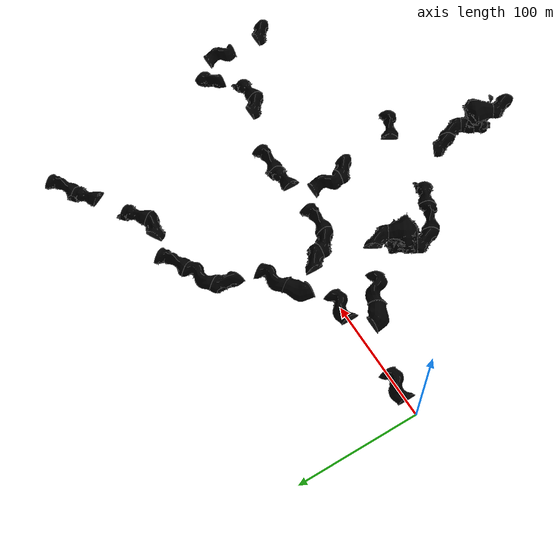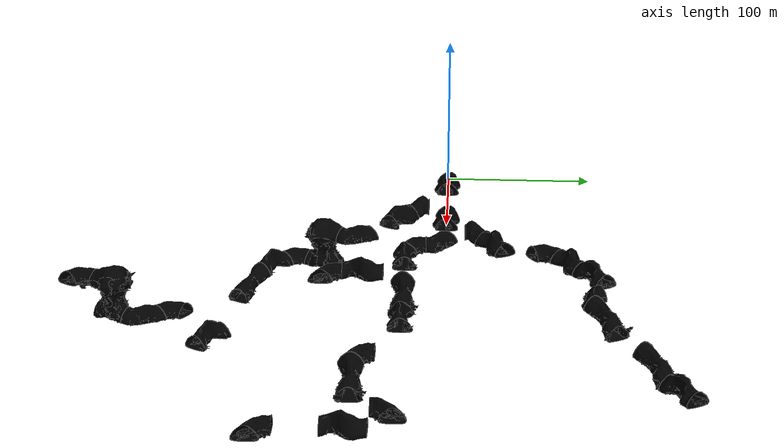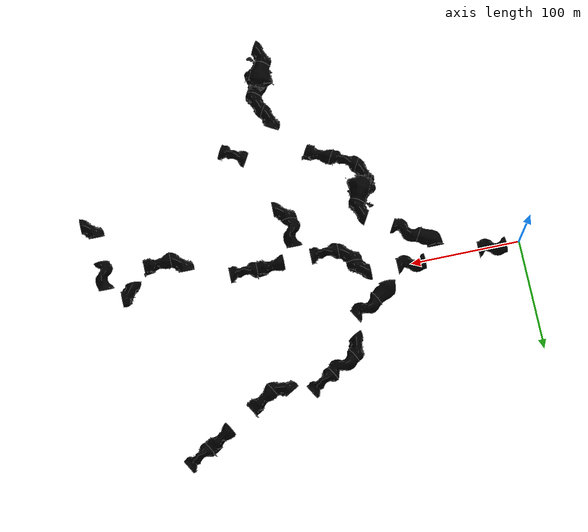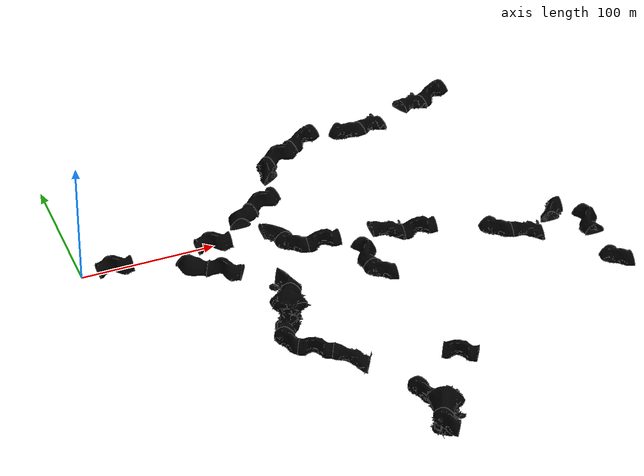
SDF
<sdf version="1.6">
 <world name="simple_cave_03">
  <physics name="1ms" type="ode">
   <max_step_size>0.004</max_step_size>
   <real_time_factor>1.0</real_time_factor>
  </physics>
  <scene>
   <ambient>0.1 0.1 0.1 1.0</ambient>
   <background>0 0 0 1.0</background>
   <grid>false</grid>
   <origin_visual>false</origin_visual>
  </scene>
  <atmosphere type="adiabatic">
   <temperature>288</temperature>
   <temperature_gradient>0.4</temperature_gradient>
  </atmosphere>
  <plugin name="ros_interface_plugin" filename="librotors_gazebo_ros_interface_plugin.so"/>
  <include>
   <name>tile_1</name>
   <uri>https://fuel.ignitionrobotics.org/1.0/OpenRobotics/models/Cave Corner 30 Type B</uri>
   <pose>125.000000 25.000000 0.000000 0 0 -1.570796</pose>
  </include>
  <include>
   <name>tile_2</name>
   <uri>https://fuel.ignitionrobotics.org/1.0/OpenRobotics/models/Cave Straight 03 Type B</uri>
   <pose>25.000000 0.000000 0.000000 0 0 1.570796</pose>
  </include>
  <include>
   <name>tile_5</name>
   <uri>https://fuel.ignitionrobotics.org/1.0/OpenRobotics/models/Cave Straight 03 Type B</uri>
   <pose>100.000000 0.000000 0.000000 0 0 1.570796</pose>
  </include>
  <include>
   <name>tile_7</name>
   <uri>https://fuel.ignitionrobotics.org/1.0/OpenRobotics/models/Cave Corner 02 Type B</uri>
   <pose>150.000000 0.000000 0.000000 0 0 1.570796</pose>
  </include>
  <include>
   <name>tile_8</name>
   <uri>https://fuel.ignitionrobotics.org/1.0/OpenRobotics/models/Cave Corner 30F Type B</uri>
   <pose>75.000000 -25.000000 0.000000 0 0 -1.570796</pose>
  </include>
  <include>
   <name>tile_9</name>
   <uri>https://fuel.ignitionrobotics.org/1.0/OpenRobotics/models/Cave Corner 02 Type B</uri>
   <pose>150.000000 -25.000000 0.000000 0 0 -1.570796</pose>
  </include>
  <include>
   <name>tile_10</name>
   <uri>https://fuel.ignitionrobotics.org/1.0/OpenRobotics/models/Cave Straight 02 Type B</uri>
   <pose>175.000000 -25.000000 0.000000 0 0 -1.570796</pose>
  </include>
  <include>
   <name>tile_12</name>
   <uri>https://fuel.ignitionrobotics.org/1.0/OpenRobotics/models/Cave Elevation Type B</uri>
   <pose>225.000000 -25.000000 -10.000000 0 0 -1.570796</pose>
  </include>
  <include>
   <name>tile_13</name>
   <uri>https://fuel.ignitionrobotics.org/1.0/OpenRobotics/models/Cave Straight 02 Type B</uri>
   <pose>250.000000 -25.000000 -10.000000 0 0 -1.570796</pose>
  </include>
  <include>
   <name>tile_16</name>
   <uri>https://fuel.ignitionrobotics.org/1.0/OpenRobotics/models/Cave Corner 02 Type B</uri>
   <pose>350.000000 -25.000000 -20.000000 0 0 3.141593</pose>
  </include>
  <include>
   <name>tile_19</name>
   <uri>https://fuel.ignitionrobotics.org/1.0/OpenRobotics/models/Cave Straight 03 Type B</uri>
   <pose>200.000000 -50.000000 0.000000 0 0 0.000000</pose>
  </include>
  <include>
   <name>tile_20</name>
   <uri>https://fuel.ignitionrobotics.org/1.0/OpenRobotics/models/Cave Corner 02 Type B</uri>
   <pose>300.000000 -50.000000 -10.000000 0 0 -1.570796</pose>
  </include>
  <include>
   <name>tile_21</name>
   <uri>https://fuel.ignitionrobotics.org/1.0/OpenRobotics/models/Cave Elevation Type B</uri>
   <pose>325.000000 -50.000000 -20.000000 0 0 -1.570796</pose>
  </include>
  <include>
   <name>tile_23</name>
   <uri>https://fuel.ignitionrobotics.org/1.0/OpenRobotics/models/Cave Straight 03 Type B</uri>
   <pose>375.000000 -50.000000 -20.000000 0 0 0.000000</pose>
  </include>
  <include>
   <name>tile_24</name>
   <uri>https://fuel.ignitionrobotics.org/1.0/OpenRobotics/models/Cave Corner 02 Type B</uri>
   <pose>200.000000 -75.000000 0.000000 0 0 -1.570796</pose>
  </include>
  <include>
   <name>tile_26</name>
   <uri>https://fuel.ignitionrobotics.org/1.0/OpenRobotics/models/Cave Corner 02 Type B</uri>
   <pose>375.000000 -100.000000 -20.000000 0 0 -1.570796</pose>
  </include>
  <include>
   <name>tile_100</name>
   <uri>https://fuel.ignitionrobotics.org/1.0/OpenRobotics/models/Cave Straight 03 Type B</uri>
   <pose>98.400635 -31.250000 0.000000 0 0 1.047198</pose>
  </include>
  <include>
   <name>tile_102</name>
   <uri>https://fuel.ignitionrobotics.org/1.0/OpenRobotics/models/Cave Corner 02 Type B</uri>
   <pose>141.701905 -56.250000 0.000000 0 0 1.047198</pose>
  </include>
  <include>
   <name>tile_103</name>
   <uri>https://fuel.ignitionrobotics.org/1.0/OpenRobotics/models/Cave Vertical Shaft Type B</uri>
   <pose>129.201905 -77.900635 -20.000000 0 0 -0.523599</pose>
  </include>
  <include>
   <name>tile_105</name>
   <uri>https://fuel.ignitionrobotics.org/1.0/OpenRobotics/models/Cave Straight 02 Type B</uri>
   <pose>237.455081 -140.400635 -30.000000 0 0 -2.094395</pose>
  </include>
  <include>
   <name>tile_106</name>
   <uri>https://fuel.ignitionrobotics.org/1.0/OpenRobotics/models/Cave Corner 02 Type B</uri>
   <pose>116.701905 -99.551270 -20.000000 0 0 -2.094395</pose>
  </include>
  <include>
   <name>tile_107</name>
   <uri>https://fuel.ignitionrobotics.org/1.0/OpenRobotics/models/Cave Straight 02 Type B</uri>
   <pose>138.352540 -112.051270 -20.000000 0 0 -2.094395</pose>
  </include>
  <include>
   <name>tile_108</name>
   <uri>https://fuel.ignitionrobotics.org/1.0/OpenRobotics/models/Cave Elevation Type B</uri>
   <pose>160.003175 -124.551270 -30.000000 0 0 -2.094395</pose>
  </include>
  <include>
   <name>tile_111</name>
   <uri>https://fuel.ignitionrobotics.org/1.0/OpenRobotics/models/Cave Corner 02 Type B</uri>
   <pose>190.804446 -171.201905 -30.000000 0 0 -2.094395</pose>
  </include>
  <include>
   <name>tile_112</name>
   <uri>https://fuel.ignitionrobotics.org/1.0/OpenRobotics/models/Cave Corner 02 Type B</uri>
   <pose>212.455081 -183.701905 -30.000000 0 0 1.047198</pose>
  </include>
  <include>
   <name>tile_113</name>
   <uri>https://fuel.ignitionrobotics.org/1.0/OpenRobotics/models/Cave Vertical Shaft Type B</uri>
   <pose>199.955081 -205.352540 -30.000000 0 0 2.617994</pose>
  </include>
  <include>
   <name>tile_114</name>
   <uri>https://fuel.ignitionrobotics.org/1.0/OpenRobotics/models/Cave Corner 02 Type B</uri>
   <pose>187.455081 -227.003175 -10.000000 0 0 -2.094395</pose>
  </include>
  <include>
   <name>tile_200</name>
   <uri>https://fuel.ignitionrobotics.org/1.0/OpenRobotics/models/Cave Corner 02 Type B</uri>
   <pose>157.551270 65.349365 0.000000 0 0 3.665191</pose>
  </include>
  <include>
   <name>tile_201</name>
   <uri>https://fuel.ignitionrobotics.org/1.0/OpenRobotics/models/Cave Straight 03 Type B</uri>
   <pose>179.201905 77.849365 0.000000 0 0 2.094395</pose>
  </include>
  <include>
   <name>tile_202</name>
   <uri>https://fuel.ignitionrobotics.org/1.0/OpenRobotics/models/Cave Straight 02 Type B</uri>
   <pose>200.852540 90.349365 0.000000 0 0 -1.047198</pose>
  </include>
  <include>
   <name>tile_205</name>
   <uri>https://fuel.ignitionrobotics.org/1.0/OpenRobotics/models/Cave Straight 03 Type B</uri>
   <pose>148.400635 31.198730 0.000000 0 0 2.094395</pose>
  </include>
  <include>
   <name>tile_207</name>
   <uri>https://fuel.ignitionrobotics.org/1.0/OpenRobotics/models/Cave Corner 02 Type B</uri>
   <pose>235.003175 81.198730 0.000000 0 0 -1.047198</pose>
  </include>
  <include>
   <name>tile_208</name>
   <uri>https://fuel.ignitionrobotics.org/1.0/OpenRobotics/models/Cave Elevation Type B</uri>
   <pose>256.653811 93.698730 -10.000000 0 0 -1.047198</pose>
  </include>
  <include>
   <name>tile_210</name>
   <uri>https://fuel.ignitionrobotics.org/1.0/OpenRobotics/models/Cave Elevation Type B</uri>
   <pose>299.955081 118.698730 -20.000000 0 0 -1.047198</pose>
  </include>
  <include>
   <name>tile_211</name>
   <uri>https://fuel.ignitionrobotics.org/1.0/OpenRobotics/models/Cave Straight 02 Type B</uri>
   <pose>321.605716 131.198730 -20.000000 0 0 -1.047198</pose>
  </include>
  <wind><linear_velocity>0.000000 0.000000 0.000000</linear_velocity></wind>
  <plugin name="ignition::gazebo::systems::WindEffects" filename="libignition-gazebo-wind-effects-system.so">
   <horizontal>
    <magnitude>
     <time_for_rise>10</time_for_rise>
     <sin><amplitude_percent>0.05</amplitude_percent><period>60</period></sin>
     <noise type="gaussian"><mean>0</mean><stddev>0.0002</stddev></noise>
    </magnitude>
    <direction>
     <time_for_rise>30</time_for_rise>
     <sin><amplitude>5</amplitude><period>20</period></sin>
     <noise type="gaussian"><mean>0</mean><stddev>0.03</stddev></noise>
    </direction>
   </horizontal>
   <vertical><noise type="gaussian"><mean>0</mean><stddev>0.03</stddev></noise></vertical>
  </plugin>
 </world>
</sdf>

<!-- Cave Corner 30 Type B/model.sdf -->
<sdf version="1.6">
  <model name="Cave Corner 30 Type B">
    <static>true</static>
    <link name="base_link">
    <collision name="collision">
      <pose>0 0 0 0 0 0</pose>
      <geometry>
        <mesh>
          <uri>model://Cave Corner 30 Type B/meshes/corner30deg.dae</uri>
          <scale>1.0 1.0 1.0</scale>
        </mesh>
      </geometry>
    </collision>
    <visual name="CaveWall_visual">
      <geometry>
        <mesh>
          <uri>model://Cave Corner 30 Type B/meshes/corner30deg.dae</uri>
          <scale>1.0 1.0 1.0</scale>
        </mesh>
      </geometry>
      <material>
        <diffuse>0 0 0 1</diffuse>
        <specular>0 0 0 1</specular>
        <pbr>
          <metal>
            <albedo_map>model://Cave Corner 30 Type B/materials/textures/CaveWall_Albedo.png</albedo_map>
            <normal_map>model://Cave Corner 30 Type B/materials/textures/CaveWall_Normal.png</normal_map>
            <roughness_map>model://Cave Corner 30 Type B/materials/textures/CaveWall_Roughness.png</roughness_map>
          </metal>
        </pbr>

        <script>
          <uri>model://Cave Corner 30 Type B/materials/scripts/</uri>
          <uri>model://Cave Corner 30 Type B/materials/textures/</uri>
          <name>CaveTile/CaveWall_Diffuse</name>
        </script>
      </material>
    </visual>
    </link>
  </model>
</sdf>

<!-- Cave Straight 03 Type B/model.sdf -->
<sdf version="1.6">
  <model name="Cave Straight 03 Type B">
    <static>true</static>
    <link name="base_link">
      <collision name="collision">
        <pose>0 0 0 0 0 0</pose>
        <geometry>
          <mesh>
            <uri>model://Cave Straight 03 Type B/meshes/cavestraight03.dae</uri>
            <scale>1.005 1.005 1.0</scale>
          </mesh>
        </geometry>
      </collision>
      <visual name="StriatedRock_visual">
        <geometry>
          <mesh>
            <uri>model://Cave Straight 03 Type B/meshes/cavestraight03.dae</uri>
            <submesh>
              <name>StriatedRock</name>
              <center>false</center>
            </submesh>
            <scale>1.005 1.005 1.0</scale>
          </mesh>
        </geometry>
        <material>
          <diffuse>0 0 0 1</diffuse>
          <specular>0 0 0 1</specular>
          <pbr>
            <metal>
              <albedo_map>model://Cave Straight 03 Type B/materials/textures/StriatedRock_Albedo.png</albedo_map>
              <normal_map>model://Cave Straight 03 Type B/materials/textures/StriatedRock_Normal.png</normal_map>
              <roughness_map>model://Cave Straight 03 Type B/materials/textures/StriatedRock_Roughness.png</roughness_map>
            </metal>
          </pbr>

          <script>
            <uri>model://Cave Straight 03 Type B/materials/scripts/</uri>
            <uri>model://Cave Straight 03 Type B/materials/textures/</uri>
            <name>CaveTile/StriatedRock_Diffuse</name>
          </script>
        </material>
      </visual>
      <visual name="RockPile_visual">
        <geometry>
          <mesh>
            <uri>model://Cave Straight 03 Type B/meshes/cavestraight03.dae</uri>
            <submesh>
              <name>RockPile</name>
              <center>false</center>
            </submesh>
            <scale>1.005 1.005 1.0</scale>
          </mesh>
        </geometry>
        <material>
          <diffuse>0 0 0 1</diffuse>
          <specular>0 0 0 1</specular>
          <pbr>
            <metal>
              <albedo_map>model://Cave Straight 03 Type B/materials/textures/RockPile_Albedo.png</albedo_map>
              <normal_map>model://Cave Straight 03 Type B/materials/textures/RockPile_Normal.png</normal_map>
              <roughness_map>model://Cave Straight 03 Type B/materials/textures/RockPile_Roughness.png</roughness_map>
            </metal>
          </pbr>

          <script>
            <uri>model://Cave Straight 03 Type B/materials/scripts/</uri>
            <uri>model://Cave Straight 03 Type B/materials/textures/</uri>
            <name>CaveTile/RockPile_Diffuse</name>
          </script>
        </material>
      </visual>
      <visual name="CaveWall_visual">
        <geometry>
          <mesh>
            <uri>model://Cave Straight 03 Type B/meshes/cavestraight03.dae</uri>
            <submesh>
              <name>CaveWall</name>
              <center>false</center>
            </submesh>
            <scale>1.005 1.005 1.0</scale>
          </mesh>
        </geometry>
        <material>
          <diffuse>0 0 0 1</diffuse>
          <specular>0 0 0 1</specular>
          <pbr>
            <metal>
              <albedo_map>model://Cave Straight 03 Type B/materials/textures/CaveWall_Albedo.png</albedo_map>
              <normal_map>model://Cave Straight 03 Type B/materials/textures/CaveWall_Normal.png</normal_map>
              <roughness_map>model://Cave Straight 03 Type B/materials/textures/CaveWall_Roughness.png</roughness_map>
            </metal>
          </pbr>

          <script>
            <uri>model://Cave Straight 03 Type B/materials/scripts/</uri>
            <uri>model://Cave Straight 03 Type B/materials/textures/</uri>
            <name>CaveTile/CaveWall_Diffuse</name>
          </script>
        </material>
      </visual>
    </link>
  </model>
</sdf>

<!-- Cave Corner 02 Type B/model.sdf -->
<sdf version="1.6">
  <model name="Cave Corner 02 Type B">
    <static>true</static>
    <link name="base_link">
      <collision name="collision">
        <pose>0 0 0 0 0 0</pose>
        <geometry>
          <mesh>
            <uri>model://cave_corner_02/meshes/cavecorner02.dae</uri>
            <scale>1.005 1.005 1.0</scale>
          </mesh>
        </geometry>
      </collision>
      <visual name="CaveWall_visual">
        <geometry>
          <mesh>
            <uri>model://cave_corner_02/meshes/cavecorner02.dae</uri>
            <submesh>
              <name>CaveWall</name>
              <center>false</center>
            </submesh>
            <scale>1.005 1.005 1.0</scale>
          </mesh>
        </geometry>
        <material>
          <diffuse>0 0 0 1</diffuse>
          <specular>0 0 0 1</specular>
          <pbr>
            <metal>
              <albedo_map>model://cave_corner_02/materials/textures/CaveWall_Albedo.png</albedo_map>
              <normal_map>model://cave_corner_02/materials/textures/CaveWall_Normal.png</normal_map>
              <roughness_map>model://cave_corner_02/materials/textures/CaveWall_Roughness.png</roughness_map>
            </metal>
          </pbr>

          <script>
            <uri>model://cave_corner_02/materials/scripts/</uri>
            <uri>model://cave_corner_02/materials/textures/</uri>
            <name>CaveTile/CaveWall_Diffuse</name>
          </script>
        </material>
      </visual>
      <visual name="StriatedRock_visual">
        <geometry>
          <mesh>
            <uri>model://cave_corner_02/meshes/cavecorner02.dae</uri>
            <submesh>
              <name>StriatedRock</name>
              <center>false</center>
            </submesh>
            <scale>1.005 1.005 1.0</scale>
          </mesh>
        </geometry>
        <material>
          <diffuse>0 0 0 1</diffuse>
          <specular>0 0 0 1</specular>
          <pbr>
            <metal>
              <albedo_map>model://cave_corner_02/materials/textures/StriatedRock_Albedo.png</albedo_map>
              <normal_map>model://cave_corner_02/materials/textures/StriatedRock_Normal.png</normal_map>
              <roughness_map>model://cave_corner_02/materials/textures/StriatedRock_Roughness.png</roughness_map>
            </metal>
          </pbr>

          <script>
            <uri>model://cave_corner_02/materials/scripts/</uri>
            <uri>model://cave_corner_02/materials/textures/</uri>
            <name>CaveTile/StriatedRock_Diffuse</name>
          </script>
        </material>
      </visual>
      <visual name="RockPile_visual">
        <geometry>
          <mesh>
            <uri>model://cave_corner_02/meshes/cavecorner02.dae</uri>
            <submesh>
              <name>RockPile</name>
              <center>false</center>
            </submesh>
            <scale>1.005 1.005 1.0</scale>
          </mesh>
        </geometry>
        <material>
          <diffuse>0 0 0 1</diffuse>
          <specular>0 0 0 1</specular>
          <pbr>
            <metal>
              <albedo_map>model://cave_corner_02/materials/textures/RockPile_Albedo.png</albedo_map>
              <normal_map>model://cave_corner_02/materials/textures/RockPile_Normal.png</normal_map>
              <roughness_map>model://cave_corner_02/materials/textures/RockPile_Roughness.png</roughness_map>
            </metal>
          </pbr>

          <script>
            <uri>model://cave_corner_02/materials/scripts/</uri>
            <uri>model://cave_corner_02/materials/textures/</uri>
            <name>CaveTile/RockPile_Diffuse</name>
          </script>
        </material>
      </visual>
    </link>
  </model>
</sdf>

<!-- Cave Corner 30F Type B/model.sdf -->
<sdf version="1.6">
  <model name="Cave Corner 30F Type B">
    <static>true</static>
    <link name="base_link">
    <collision name="collision">
      <pose>0 0 0 0 0 0</pose>
      <geometry>
        <mesh>
          <uri>model://Cave Corner 30F Type B/meshes/corner30degflipped.dae</uri>
          <scale>1.0 1.0 1.0</scale>
        </mesh>
      </geometry>
    </collision>
    <visual name="CaveWall_visual">
      <geometry>
        <mesh>
          <uri>model://Cave Corner 30F Type B/meshes/corner30degflipped.dae</uri>
          <scale>1.0 1.0 1.0</scale>
        </mesh>
      </geometry>
      <material>
        <diffuse>0 0 0 1</diffuse>
        <specular>0 0 0 1</specular>
        <pbr>
          <metal>
            <albedo_map>model://Cave Corner 30F Type B/materials/textures/CaveWall_Albedo.png</albedo_map>
            <normal_map>model://Cave Corner 30F Type B/materials/textures/CaveWall_Normal.png</normal_map>
            <roughness_map>model://Cave Corner 30F Type B/materials/textures/CaveWall_Roughness.png</roughness_map>
          </metal>
        </pbr>

        <script>
          <uri>model://Cave Corner 30F Type B/materials/scripts/</uri>
          <uri>model://Cave Corner 30F Type B/materials/textures/</uri>
          <name>CaveTile/CaveWall_Diffuse</name>
        </script>
      </material>
    </visual>
    </link>
  </model>
</sdf>

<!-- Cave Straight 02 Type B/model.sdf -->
<sdf version="1.6">
  <model name="Cave Straight 02 Type B">
    <static>true</static>
    <link name="base_link">
      <collision name="collision">
        <pose>0 0 0 0 0 0</pose>
        <geometry>
          <mesh>
            <uri>model://Cave Straight 02 Type B/meshes/cavestraight02.dae</uri>
            <scale>1.005 1.005 1.0</scale>
          </mesh>
        </geometry>
      </collision>
      <visual name="StriatedRock_visual">
        <geometry>
          <mesh>
            <uri>model://Cave Straight 02 Type B/meshes/cavestraight02.dae</uri>
            <scale>1.005 1.005 1.0</scale>
            <submesh>
              <name>StriatedRock</name>
              <center>false</center>
            </submesh>
          </mesh>
        </geometry>
        <material>
          <diffuse>0 0 0 1</diffuse>
          <specular>0 0 0 1</specular>
          <pbr>
            <metal>
              <albedo_map>model://Cave Straight 02 Type B/materials/textures/StriatedRock_Albedo.png</albedo_map>
              <normal_map>model://Cave Straight 02 Type B/materials/textures/StriatedRock_Normal.png</normal_map>
              <roughness_map>model://Cave Straight 02 Type B/materials/textures/StriatedRock_Roughness.png</roughness_map>
            </metal>
          </pbr>

          <script>
            <uri>model://Cave Straight 02 Type B/materials/scripts/</uri>
            <uri>model://Cave Straight 02 Type B/materials/textures/</uri>
            <name>CaveTile/StriatedRock_Diffuse</name>
          </script>
        </material>
      </visual>
      <visual name="RockPile_visual">
        <geometry>
          <mesh>
            <uri>model://Cave Straight 02 Type B/meshes/cavestraight02.dae</uri>
            <scale>1.005 1.005 1.0</scale>
            <submesh>
              <name>RockPile</name>
              <center>false</center>
            </submesh>
          </mesh>
        </geometry>
        <material>
          <diffuse>0 0 0 1</diffuse>
          <specular>0 0 0 1</specular>
          <pbr>
            <metal>
              <albedo_map>model://Cave Straight 02 Type B/materials/textures/RockPile_Albedo.png</albedo_map>
              <normal_map>model://Cave Straight 02 Type B/materials/textures/RockPile_Normal.png</normal_map>
              <roughness_map>model://Cave Straight 02 Type B/materials/textures/RockPile_Roughness.png</roughness_map>
            </metal>
          </pbr>

          <script>
            <uri>model://Cave Straight 02 Type B/materials/scripts/</uri>
            <uri>model://Cave Straight 02 Type B/materials/textures/</uri>
            <name>CaveTile/RockPile_Diffuse</name>
          </script>
        </material>
      </visual>
      <visual name="CaveWall_visual">
        <geometry>
          <mesh>
            <uri>model://Cave Straight 02 Type B/meshes/cavestraight02.dae</uri>
            <scale>1.005 1.005 1.0</scale>
            <submesh>
              <name>CaveWall</name>
              <center>false</center>
            </submesh>
          </mesh>
        </geometry>
        <material>
          <diffuse>0 0 0 1</diffuse>
          <specular>0 0 0 1</specular>
          <pbr>
            <metal>
              <albedo_map>model://Cave Straight 02 Type B/materials/textures/CaveWall_Albedo.png</albedo_map>
              <normal_map>model://Cave Straight 02 Type B/materials/textures/CaveWall_Normal.png</normal_map>
              <roughness_map>model://Cave Straight 02 Type B/materials/textures/CaveWall_Roughness.png</roughness_map>
            </metal>
          </pbr>

          <script>
            <uri>model://Cave Straight 02 Type B/materials/scripts/</uri>
            <uri>model://Cave Straight 02 Type B/materials/textures/</uri>
            <name>CaveTile/CaveWall_Diffuse</name>
          </script>
        </material>
      </visual>
    </link>
  </model>
</sdf>

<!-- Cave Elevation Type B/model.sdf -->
<sdf version="1.6">
  <model name="Cave Elevation Type B">
    <static>true</static>
    <link name="base_link">
      <collision name="collision">
        <pose>0 0 0 0 0 0</pose>
        <geometry>
          <mesh>
            <uri>model://Cave Elevation Type B/meshes/caveelevation.dae</uri>
            <scale>1.0 1.0 1.0</scale>
          </mesh>
        </geometry>
      </collision>
      <visual name="CaveWall_visual">
        <geometry>
          <mesh>
            <uri>model://Cave Elevation Type B/meshes/caveelevation.dae</uri>
            <submesh>
              <name>CaveWall</name>
              <center>false</center>
            </submesh>
          </mesh>
        </geometry>
        <material>
          <diffuse>0 0 0 1</diffuse>
          <specular>0 0 0 1</specular>
          <pbr>
            <metal>
              <albedo_map>model://Cave Elevation Type B/materials/textures/CaveWall_Albedo.png</albedo_map>
              <normal_map>model://Cave Elevation Type B/materials/textures/CaveWall_Normal.png</normal_map>
              <roughness_map>model://Cave Elevation Type B/materials/textures/CaveWall_Roughness.png</roughness_map>
            </metal>
          </pbr>

          <script>
            <uri>model://Cave Elevation Type B/materials/scripts/</uri>
            <uri>model://Cave Elevation Type B/materials/textures/</uri>
            <name>CaveTile/CaveWall_Diffuse</name>
          </script>
        </material>
      </visual>
      <visual name="RockPile_visual">
        <geometry>
          <mesh>
            <uri>model://Cave Elevation Type B/meshes/caveelevation.dae</uri>
            <submesh>
              <name>RockPile</name>
              <center>false</center>
            </submesh>
          </mesh>
        </geometry>
        <material>
          <diffuse>0 0 0 1</diffuse>
          <specular>0 0 0 1</specular>
          <pbr>
            <metal>
              <albedo_map>model://Cave Elevation Type B/materials/textures/RockPile_Albedo.png</albedo_map>
              <normal_map>model://Cave Elevation Type B/materials/textures/RockPile_Normal.png</normal_map>
              <roughness_map>model://Cave Elevation Type B/materials/textures/RockPile_Roughness.png</roughness_map>
            </metal>
          </pbr>

          <script>
            <uri>model://Cave Elevation Type B/materials/scripts/</uri>
            <uri>model://Cave Elevation Type B/materials/textures/</uri>
            <name>CaveTile/RockPile_Diffuse</name>
          </script>
        </material>
      </visual>
      <visual name="StriatedRock_visual">
        <geometry>
          <mesh>
            <uri>model://Cave Elevation Type B/meshes/caveelevation.dae</uri>
            <submesh>
              <name>StriatedRock</name>
              <center>false</center>
            </submesh>
          </mesh>
        </geometry>
        <material>
          <diffuse>0 0 0 1</diffuse>
          <specular>0 0 0 1</specular>
          <pbr>
            <metal>
              <albedo_map>model://Cave Elevation Type B/materials/textures/StriatedRock_Albedo.png</albedo_map>
              <normal_map>model://Cave Elevation Type B/materials/textures/StriatedRock_Normal.png</normal_map>
              <roughness_map>model://Cave Elevation Type B/materials/textures/StriatedRock_Roughness.png</roughness_map>
            </metal>
          </pbr>

          <script>
            <uri>model://Cave Elevation Type B/materials/scripts/</uri>
            <uri>model://Cave Elevation Type B/materials/textures/</uri>
            <name>CaveTile/StriatedRock_Diffuse</name>
          </script>
        </material>
      </visual>
    </link>

    <plugin filename="libignition-gazebo-performer-detector-system.so" name="ignition::gazebo::systems::PerformerDetector">
      <topic>/subt_performer_detector</topic>
      <pose>0 0 10 0 0 0</pose>
      <geometry>
        <box>
          <size>20 30 20</size>
        </box>
      </geometry>
      <header_data>
        <key>type</key>
        <value>elevation</value>
      </header_data>
    </plugin>
  </model>
</sdf>

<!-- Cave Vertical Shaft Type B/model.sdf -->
<sdf version="1.6">
  <model name="Cave Vertical Shaft Type B">
    <static>true</static>
    <link name="base_link">
      <collision name="collision">
        <pose>0 0 0 0 0 0</pose>
        <geometry>
          <mesh>
            <uri>model://Cave Vertical Shaft Type B/meshes/caveverticalshaft.dae</uri>
            <scale>1.0 1.0 1.0</scale>
          </mesh>
        </geometry>
      </collision>
      <visual name="StriatedRock_visual">
        <geometry>
          <mesh>
            <uri>model://Cave Vertical Shaft Type B/meshes/caveverticalshaft.dae</uri>
            <submesh>
              <name>StriatedRock</name>
              <center>false</center>
            </submesh>
          </mesh>
        </geometry>
        <material>
          <diffuse>0 0 0 1</diffuse>
          <specular>0 0 0 1</specular>
          <pbr>
            <metal>
              <albedo_map>model://Cave Vertical Shaft Type B/materials/textures/StriatedRock_Albedo.png</albedo_map>
              <normal_map>model://Cave Vertical Shaft Type B/materials/textures/StriatedRock_Normal.png</normal_map>
              <roughness_map>model://Cave Vertical Shaft Type B/materials/textures/StriatedRock_Roughness.png</roughness_map>
            </metal>
          </pbr>

          <script>
            <uri>model://Cave Vertical Shaft Type B/materials/scripts/</uri>
            <uri>model://Cave Vertical Shaft Type B/materials/textures/</uri>
            <name>CaveTile/StriatedRock_Diffuse</name>
          </script>
        </material>
      </visual>
      <visual name="RockPile_visual">
        <geometry>
          <mesh>
            <uri>model://Cave Vertical Shaft Type B/meshes/caveverticalshaft.dae</uri>
            <submesh>
              <name>RockPile</name>
              <center>false</center>
            </submesh>
          </mesh>
        </geometry>
        <material>
          <diffuse>0 0 0 1</diffuse>
          <specular>0 0 0 1</specular>
          <pbr>
            <metal>
              <albedo_map>model://Cave Vertical Shaft Type B/materials/textures/RockPile_Albedo.png</albedo_map>
              <normal_map>model://Cave Vertical Shaft Type B/materials/textures/RockPile_Normal.png</normal_map>
              <roughness_map>model://Cave Vertical Shaft Type B/materials/textures/RockPile_Roughness.png</roughness_map>
            </metal>
          </pbr>

          <script>
            <uri>model://Cave Vertical Shaft Type B/materials/scripts/</uri>
            <uri>model://Cave Vertical Shaft Type B/materials/textures/</uri>
            <name>CaveTile/RockPile_Diffuse</name>
          </script>
        </material>
      </visual>
      <visual name="CaveWall_visual">
        <geometry>
          <mesh>
            <uri>model://Cave Vertical Shaft Type B/meshes/caveverticalshaft.dae</uri>
            <submesh>
              <name>CaveWall</name>
              <center>false</center>
            </submesh>
          </mesh>
        </geometry>
        <material>
          <diffuse>0 0 0 1</diffuse>
          <specular>0 0 0 1</specular>
          <pbr>
            <metal>
              <albedo_map>model://Cave Vertical Shaft Type B/materials/textures/CaveWall_Albedo.png</albedo_map>
              <normal_map>model://Cave Vertical Shaft Type B/materials/textures/CaveWall_Normal.png</normal_map>
              <roughness_map>model://Cave Vertical Shaft Type B/materials/textures/CaveWall_Roughness.png</roughness_map>
            </metal>
          </pbr>

          <script>
            <uri>model://Cave Vertical Shaft Type B/materials/scripts/</uri>
            <uri>model://Cave Vertical Shaft Type B/materials/textures/</uri>
            <name>CaveTile/CaveWall_Diffuse</name>
          </script>
        </material>
      </visual>
    </link>

    <plugin filename="libignition-gazebo-performer-detector-system.so" name="ignition::gazebo::systems::PerformerDetector">
      <header_data>
        <key>type</key>
        <value>vertical</value>
      </header_data>
      <topic>/subt_performer_detector</topic>
      <pose>0.2 -0.2 16 0 0 0</pose>
      <geometry>
        <box>
          <size>11.5 11.5 37</size>
        </box>
      </geometry>
    </plugin>
  </model>
</sdf>
